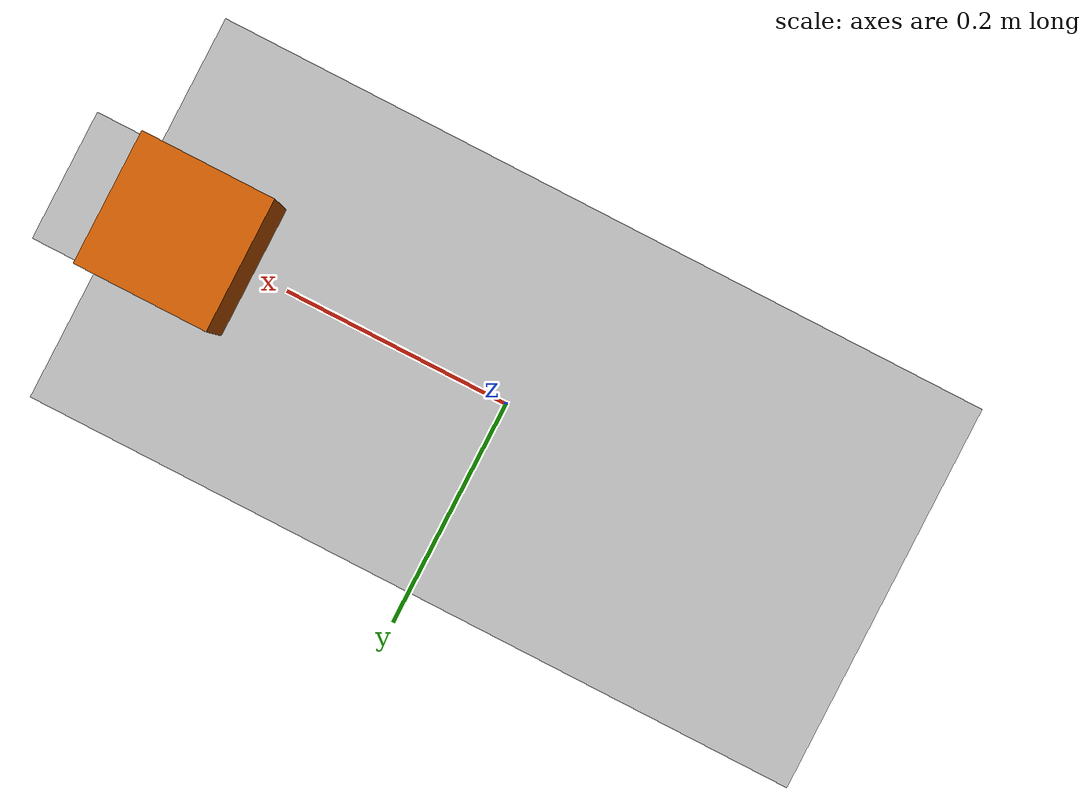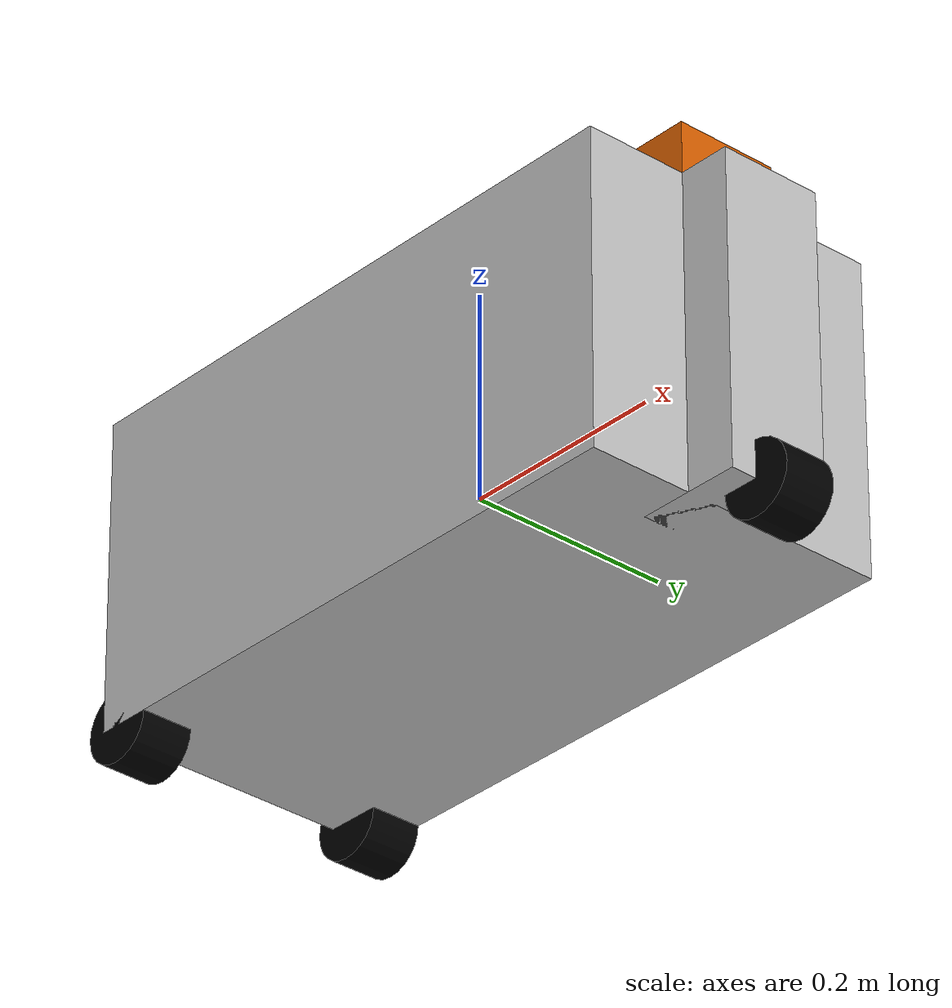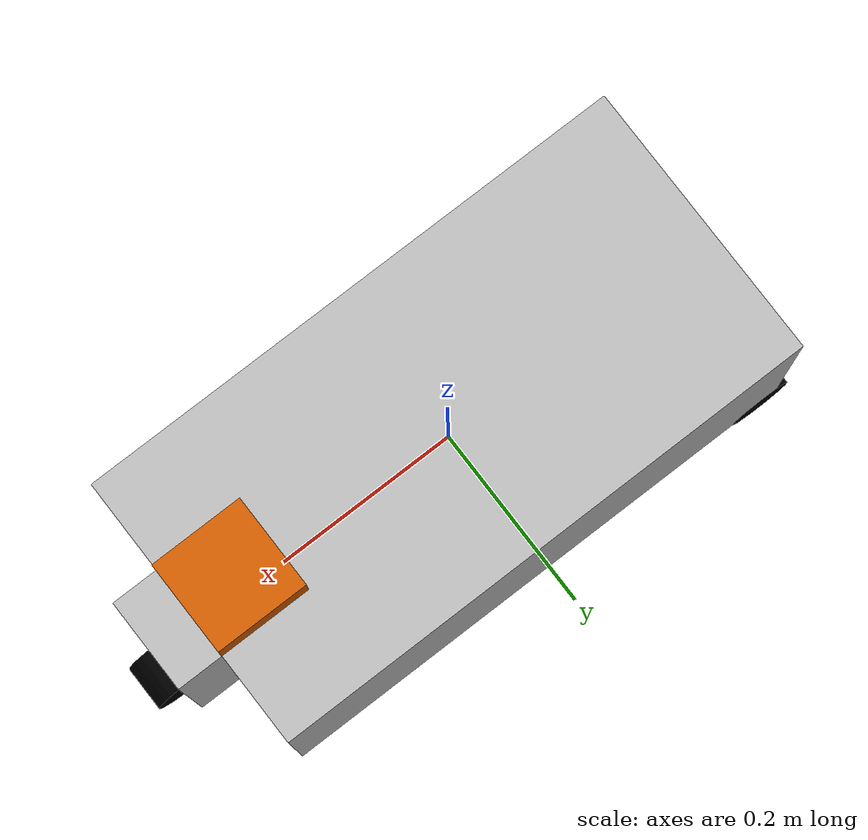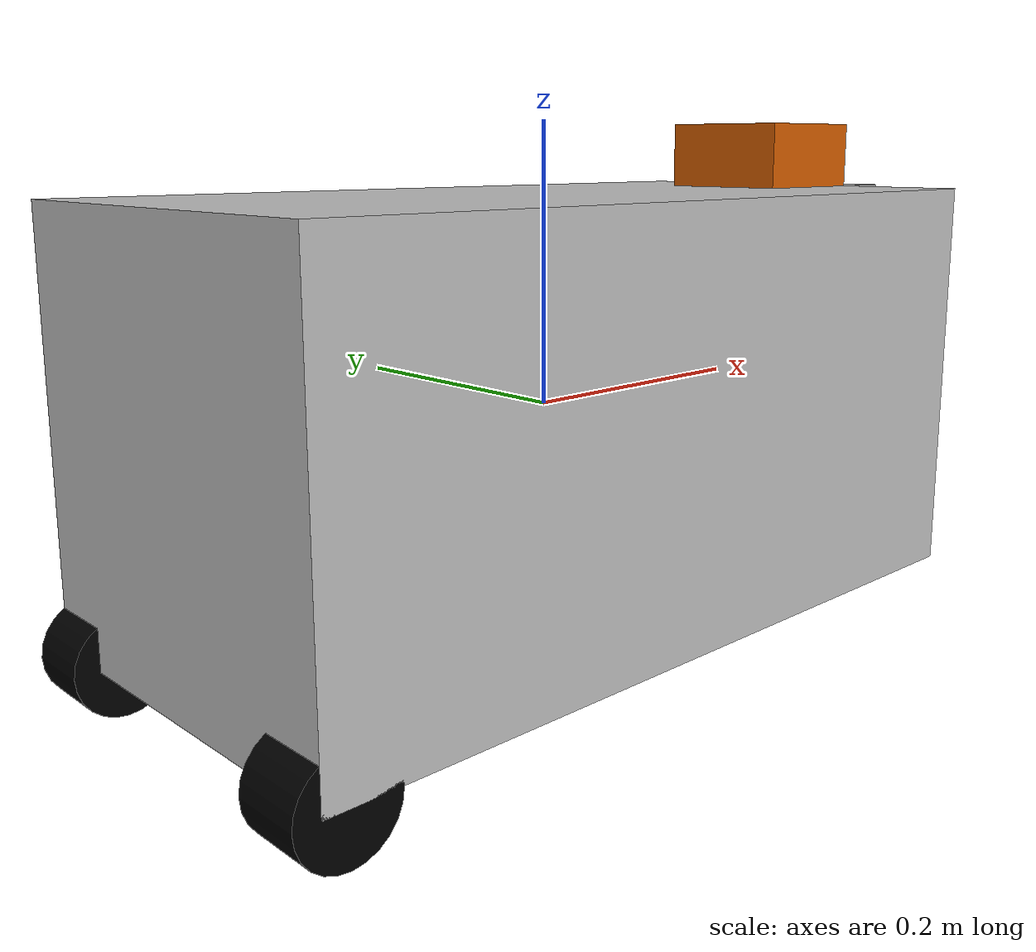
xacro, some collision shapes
<?xml version='1.0'?>

<!-- Robot URDF model adapted from:
  Original source: https://github.com/osrf/rosbook/blob/master/code/tortoisebot/tortoisebot.urdf
  Credit: OSRF ROS Book - TortoiseBot
-->

<robot name="myrobot" xmlns:xacro="http://www.ros.org/wiki/xacro">
<xacro:include filename="myrobot.gazebo" />

  <link name="base_link">
    <visual>
      <geometry>
        <box size="0.6 0.3 0.3"/>
      </geometry>
         <material name="silver">
        <color rgba="0.75 0.75 0.75 1"/>
      </material>
    </visual>
    <collision>
      <geometry>
        <box size="0.6 0.3 0.3"/>
      </geometry>
    </collision>
    <inertial>
      <mass value="1.0"/>
      <inertia ixx="0.015" iyy="0.0375" izz="0.0375" ixy="0" ixz="0" iyz="0"/>
    </inertial>
  </link>

  <link name="front_caster">
    <visual>
      <geometry>
        <box size="0.1 0.1 0.3"/>
      </geometry>
        <material name="silver">
        <color rgba="0.75 0.75 0.75 1"/>
      </material>
    </visual>
    <collision>
      <geometry>
        <box size="0.1 0.1 0.3"/>
      </geometry>
    </collision>
    <inertial>
      <mass value="0.1"/>
      <inertia ixx="0.00083" iyy="0.00083" izz="0.000167" ixy="0" ixz="0" iyz="0"/>
    </inertial>
  </link>

  <joint name="front_caster_joint" type="continuous">
    <axis xyz="0 0 1"/>
    <parent link="base_link"/>
    <child link="front_caster"/>
    <origin rpy="0 0 0" xyz="0.3 0 0"/>
  </joint>

  <link name="front_wheel">
    <visual>
      <geometry>
        <cylinder length="0.05" radius="0.035"/>
      </geometry>
      <material name="black">
        <color rgba="0.0 0.0 0.0 1.0"/>
        </material>
    </visual>
    <collision>
      <geometry>
        <cylinder length="0.05" radius="0.035"/>
      </geometry>
    </collision>
    <inertial>
      <mass value="0.1"/>
      <inertia ixx="5.1458e-5" iyy="5.1458e-5" izz="6.125e-5" ixy="0" ixz="0" iyz="0"/>
    </inertial>
  </link>

  <joint name="front_wheel_joint" type="continuous">
    <axis xyz="0 0 1"/>
    <parent link="front_caster"/>
    <child link="front_wheel"/>
    <origin rpy="-1.5708 0 0" xyz="0.05 0 -.15"/>
  </joint>

  <link name="right_wheel">
    <visual>
      <geometry>
        <cylinder length="0.05" radius="0.035"/>
      </geometry>
      <material name="black">
        <color rgba="0 0 0 1"/>
      </material>
    </visual>
     <transparency>0.3</transparency>
    <collision>
      <geometry>
        <cylinder length="0.05" radius="0.035"/>
      </geometry>
    </collision>
    <inertial>
      <mass value="0.1"/>
      <inertia ixx="5.1458e-5" iyy="5.1458e-5" izz="6.125e-5" ixy="0" ixz="0" iyz="0"/>
    </inertial>
  </link>

  <joint name="right_wheel_joint" type="continuous">
    <axis xyz="0 0 1"/>
    <parent link="base_link"/>
    <child link="right_wheel"/>
    <origin rpy="-1.5708 0 0" xyz="-0.2825 -0.125 -.15"/>
  </joint>

  <link name="left_wheel">
    <visual>
      <geometry>
        <cylinder length="0.05" radius="0.035"/>
      </geometry>
       <material name="black">
        <color rgba="0.0 0.0 0.0 1.0"/>
       </material>
    </visual>
    <collision>
      <geometry>
        <cylinder length="0.05" radius="0.035"/>
      </geometry>
    </collision>
    <inertial>
      <mass value="0.1"/>
      <inertia ixx="5.1458e-5" iyy="5.1458e-5" izz="6.125e-5" ixy="0" ixz="0" iyz="0"/>
    </inertial>
  </link>

  <joint name="left_wheel_joint" type="continuous">
    <axis xyz="0 0 1"/>
    <parent link="base_link"/>
    <child link="left_wheel"/>
    <origin rpy="-1.5708 0 0" xyz="-0.2825 0.125 -.15"/>
  </joint>

   <joint name="lidar_joint" type="fixed">
    <parent link="base_link"/>
    <child link="lidar"/>
    <origin xyz="0.25 0 0.15" rpy="0 0 0"/>
  </joint>

<link name="lidar">
    <visual>
      <origin xyz="0 0 0" rpy="0 0 0"/>
      <geometry>
        <mesh filename="file://$(find ros2_lidar_object_detector)/meshes/lidar.dae"/>
      </geometry>
    </visual>
    <collision>
      <origin xyz="0 0 0" rpy="0 0 0"/>
      <geometry>
        <box size="0.1 0.1 0.1"/>
      </geometry>
    </collision>
    <inertial>
      <mass value="1e-5"/>
      <origin xyz="0 0 0" rpy="0 0 0"/>
      <inertia ixx="1e-6" ixy="0" ixz="0" iyy="1e-6" iyz="0" izz="1e-6"/>
    </inertial>
  </link>

</robot>
